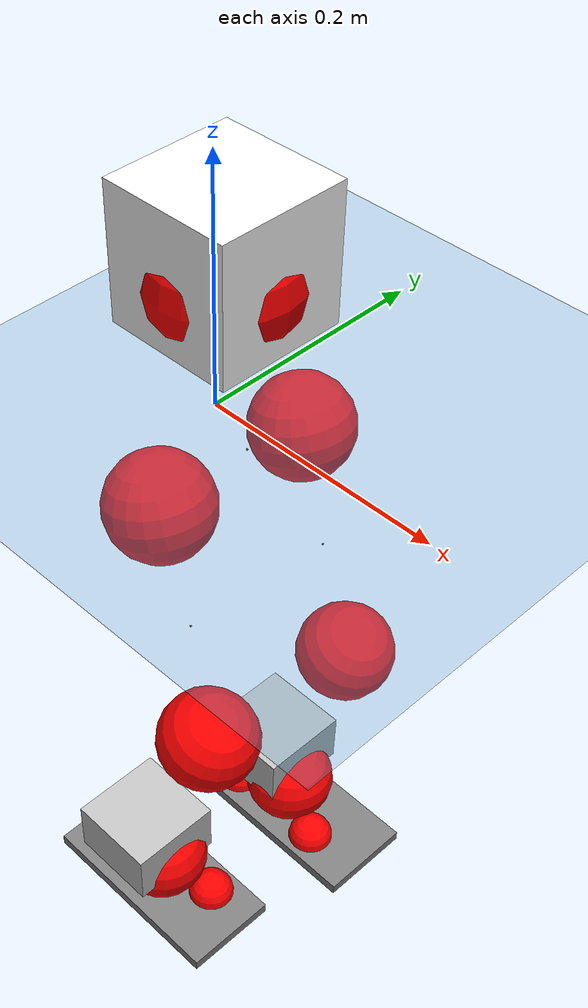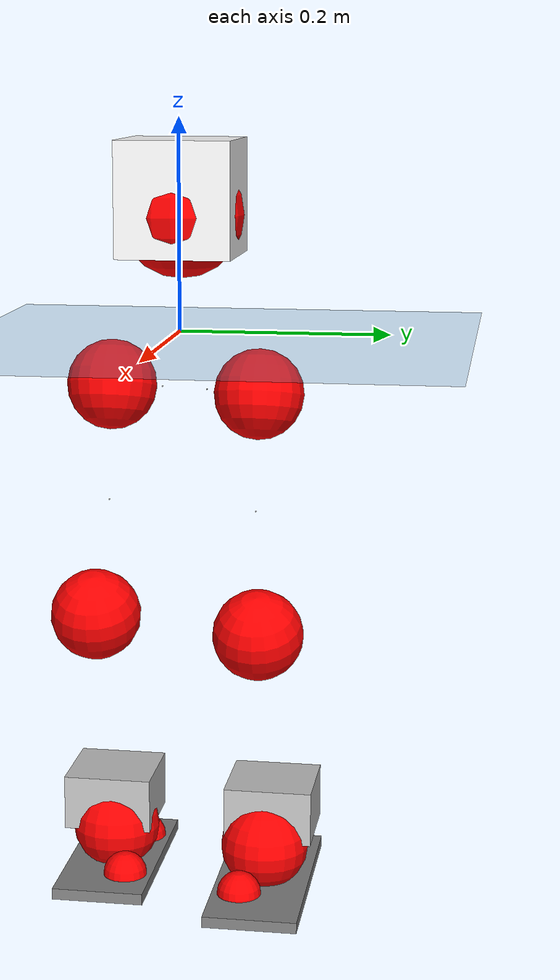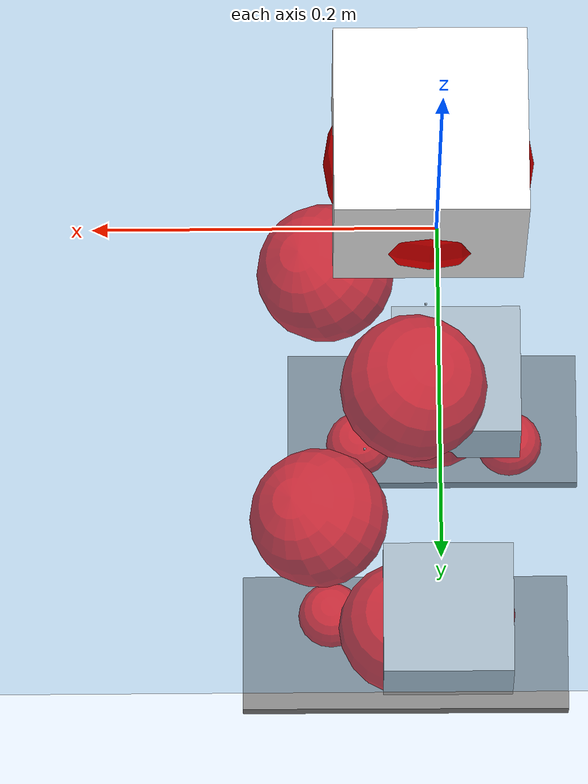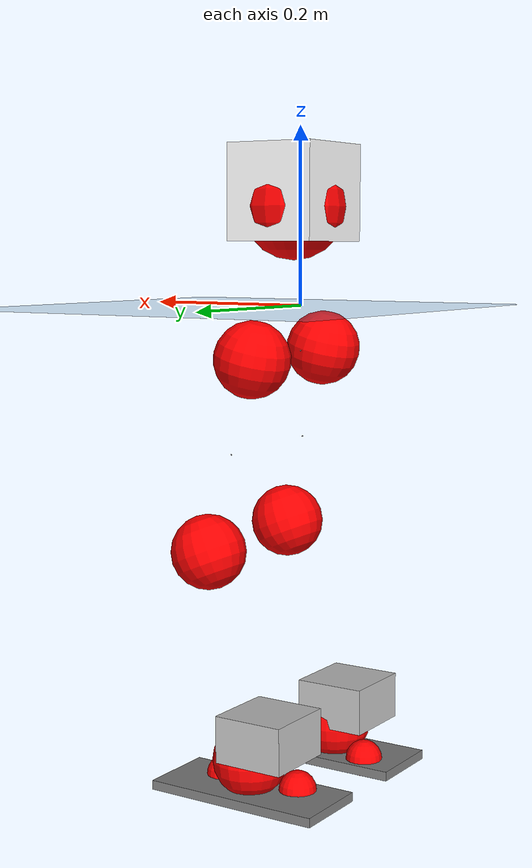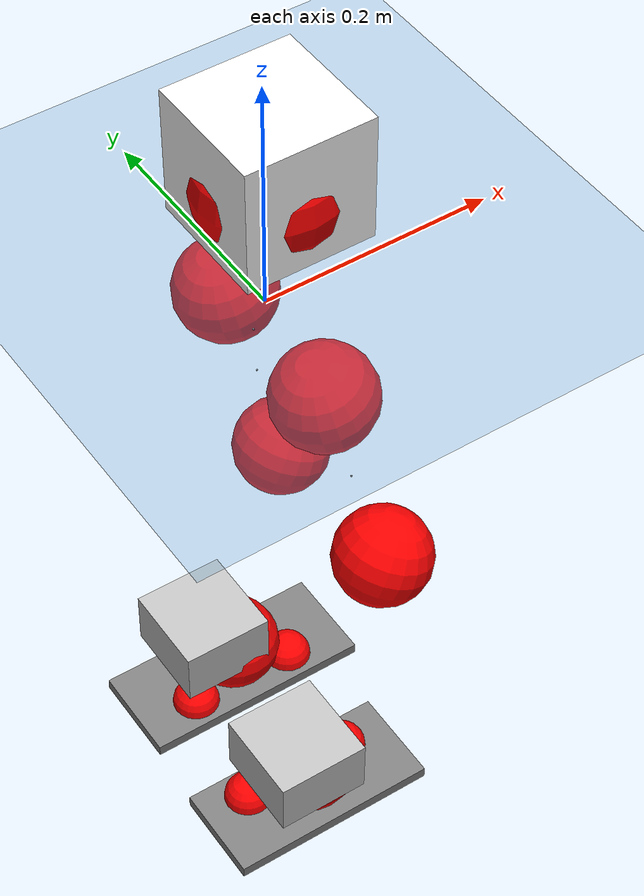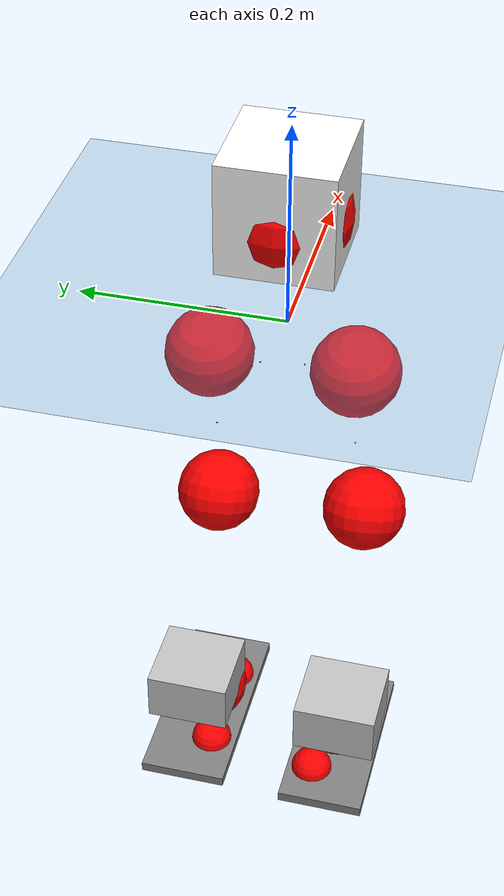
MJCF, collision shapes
<mujoco model="pi_12dof_release_v1">
  <compiler angle="radian" assetdir="assets" balanceinertia="true" inertiafromgeom="false"/>

  <option timestep="0.005" density="1.2" viscosity="2e-05"/>

  <size nkey="1"/>

  <visual>
    <quality shadowsize="8192"/>
    <map shadowclip="0.5"/>
  </visual>

  <default>
    <default class="/">
      <joint armature="0.01" damping="0.01" frictionloss="0.01"/>
      <geom contype="0" conaffinity="0" group="1" solref="-1000 -80"/>
      <site size="0.01 0.005 0.005" group="5"/>
      <general forcelimited="true" biastype="affine" gainprm="20" biasprm="0 -20 -0.5"/>
      <default class="foot">
        <geom size="0.0845 0.036 0.005" type="box" condim="6" group="4" priority="1" friction="0.9 0.2 0.2" solimp="0.015 1 0.005"/>
      </default>
      <default class="reward_collision_sphere">
        <geom group="5" rgba="1 0 0 1"/>
      </default>
    </default>
  </default>

  <asset>
    <texture type="skybox" colorspace="auto" name="//unnamed_texture_0" builtin="gradient" rgb1="0.95 0.95 0.95" rgb2="0.95 0.95 0.95" width="100" height="600"/>
    <texture type="2d" colorspace="auto" name="texplane" builtin="checker" rgb1="0.345 0.575 0.748" rgb2="0.345 0.575 0.748" markrgb="1 1 1" width="512" height="512"/>
    <material name="MatPlane" class="/" texture="texplane" texuniform="true" texrepeat="2 2" specular="0.9"/>
    <mesh name="baselink_1" class="/" file="baselink_1.STL"/>
    <mesh name="r_hip_pitch_link" class="/" file="r_hip_pitch_link.STL"/>
    <mesh name="r_hip_roll_link" class="/" file="r_hip_roll_link.STL"/>
    <mesh name="r_thigh_link" class="/" file="r_thigh_link.STL"/>
    <mesh name="r_calf_link" class="/" file="r_calf_link.STL"/>
    <mesh name="r_ankle_pitch_link" class="/" file="r_ankle_pitch_link.STL"/>
    <mesh name="r_ankle_roll_link" class="/" file="r_ankle_roll_link.STL"/>
    <mesh name="l_hip_pitch_link" class="/" file="l_hip_pitch_link.STL"/>
    <mesh name="l_hip_roll_link" class="/" file="l_hip_roll_link.STL"/>
    <mesh name="l_thigh_link" class="/" file="l_thigh_link.STL"/>
    <mesh name="l_calf_link" class="/" file="l_calf_link.STL"/>
    <mesh name="l_ankle_pitch_link" class="/" file="l_ankle_pitch_link.STL"/>
    <mesh name="l_ankle_roll_link" class="/" file="l_ankle_roll_link.STL"/>
  </asset>

  <worldbody>
    <geom name="floor" class="/" size="100 100 0.125" type="plane" group="0" material="MatPlane"/>
    <light name="toplight_shadow" class="/" pos="0 0 5" dir="0.0990148 0.0990148 -0.990148" type="directional" ambient="0.04 0.04 0.04" diffuse="0.55 0.55 0.55" specular="0.12 0.12 0.12"/>
    <light name="toplight_fill" class="/" pos="0 0 5" dir="0.0990148 0.0990148 -0.990148" type="directional" castshadow="false" ambient="0.04 0.04 0.04" diffuse="0.3 0.3 0.3" specular="0.08 0.08 0.08"/>
    <body name="trunk" pos="0.0072768 0.00328468 -0.00013879" quat="0.999997 -0.000447189 -0.00226247 -0.000567663">
      <inertial pos="0.00975582 -0.00353958 0.0625218" quat="0.694641 0.00960916 0.00881948 0.719239" mass="2.7173" diaginertia="0.00211751 0.00588436 0.0377702"/>
      <joint name="//unnamed_joint_0" type="free"/>
      <geom name="//unnamed_geom_1" class="/" type="mesh" density="0" rgba="1 1 1 1" mesh="baselink_1"/>
      <geom name="//unnamed_geom_2" class="/" size="0.0539615 0.0539615 0.0539615" pos="0 0 0.126535" type="box" rgba="1 1 1 1"/>
      <geom name="//unnamed_geom_3" class="reward_collision_sphere" size="0.0593577" pos="0 0 0.110719"/>
      <site name="imu" class="/" pos="0.0065438 0.00210041 -0.00640394" size="0.0107923"/>
      <camera name="track" class="/" pos="0 -1.83145 0" quat="0.707107 0.707107 0 0" mode="trackcom"/>
      <camera name="ego_camera" class="/" pos="0.0555204 0 0.284705" quat="-0.5 -0.5 0.5 0.5"/>
      <body name="r_hip_pitch_link" pos="0.00206444 -0.0188358 -0.0519388" quat="0.992371 -0.00230572 -0.123242 -0.00241957">
        <inertial pos="0.00887391 -0.0494794 0.000954535" quat="-0.0212559 0.700367 -0.0323957 0.712731" mass="0.420409" diaginertia="2.18347e-05 6.35402e-05 0.000749533"/>
        <joint name="r_hip_pitch_joint" class="/" pos="0 0 0" axis="0.00708261 -0.999872 0.0143476" stiffness="0.0372217" range="-1.73876 1.26719" armature="0.0105437" damping="0.0348589" frictionloss="0.00893072"/>
        <geom name="//unnamed_geom_4" class="/" type="mesh" density="0" rgba="0.75294 0.75294 0.75294 1" mesh="r_hip_pitch_link"/>
        <geom name="//unnamed_geom_5" class="/" size="0.000539615 0.000539615 0.000539615" type="box" rgba="0.75294 0.75294 0.75294 1"/>
        <body name="r_hip_roll_link" pos="6.52944e-05 -0.0488088 0.000620825" quat="1 5.99675e-06 5.85346e-05 4.72703e-05">
          <inertial pos="-0.00857871 0.00226811 -0.102279" quat="0.699939 -0.0848241 -0.0836591 0.704196" mass="0.479863" diaginertia="7.24113e-05 0.000182244 0.00126931"/>
          <joint name="r_hip_roll_joint" class="/" pos="0 0 0" axis="-1 0.000186074 -0.000155393" range="-0.0209483 0.472929" armature="0.0144322" damping="0.0246516" frictionloss="0.0115734"/>
          <geom name="//unnamed_geom_6" class="/" type="mesh" density="0" rgba="0.75294 0.75294 0.75294 1" mesh="r_hip_roll_link"/>
          <geom name="//unnamed_geom_7" class="/" size="0.000539615 0.000539615 0.000539615" type="box" rgba="0.75294 0.75294 0.75294 1"/>
          <geom name="//unnamed_geom_8" class="reward_collision_sphere" size="0.0431692"/>
          <body name="r_thigh_link" pos="0.000104078 0.00218033 -0.110293" quat="0.999999 -0.00103317 0.000946487 -5.74926e-05">
            <inertial pos="-0.00196835 -0.000154957 -0.0713094" quat="0.737943 0.674236 0.0245927 0.0155412" mass="0.144299" diaginertia="2.76004e-05 6.03278e-05 0.000595777"/>
            <joint name="r_thigh_joint" class="/" pos="0 0 0" axis="0.0131306 0.0181816 -0.999748" stiffness="0.037233" range="-0.288646 0.541056" armature="0.0139222" damping="0.00707057" frictionloss="0.00978942"/>
            <geom name="//unnamed_geom_9" class="/" type="mesh" density="0" rgba="0.75294 0.75294 0.75294 1" mesh="r_thigh_link"/>
            <geom name="//unnamed_geom_10" class="/" size="0.000539615 0.000539615 0.000539615" type="box" rgba="0.75294 0.75294 0.75294 1"/>
            <body name="r_calf_link" pos="6.43375e-05 -0.00795319 -0.109847" quat="0.947646 0.000195063 0.319323 -0.000225569">
              <inertial pos="-0.00468325 0.000433349 -0.110659" quat="0.999972 -0.00659109 0.00201405 -0.00277717" mass="0.86796" diaginertia="0.000731641 0.00211563 0.0017098"/>
              <joint name="r_calf_joint" class="/" pos="0 0 0" axis="0.00188062 -0.999988 0.00445835" range="-1.68334 0.760431" armature="0.00586869" damping="0.0346952" frictionloss="0.00636366"/>
              <geom name="//unnamed_geom_11" class="/" type="mesh" density="0" rgba="0.75294 0.75294 0.75294 1" mesh="r_calf_link"/>
              <geom name="//unnamed_geom_12" class="/" size="0.000539615 0.000539615 0.000539615" type="box" rgba="0.75294 0.75294 0.75294 1"/>
              <geom name="//unnamed_geom_13" class="reward_collision_sphere" size="0.0431692"/>
              <body name="r_ankle_pitch_link" pos="0.00304957 -0.000968993 -0.227331" quat="0.98065 0.00138184 -0.195761 0.00106349">
                <inertial pos="0.00702475 0.011205 -0.00123753" quat="0.00797179 0.702908 0.00460964 0.711221" mass="0.242765" diaginertia="6.8278e-05 0.000142642 0.00124817"/>
                <joint name="r_ankle_pitch_joint" class="/" pos="0 0 0" axis="0.0394229 -0.999208 -0.00537197" stiffness="0.0349823" range="-1.20333 0.416773" armature="0.00962388" damping="0.00570144" frictionloss="0.0124353"/>
                <geom name="//unnamed_geom_14" class="/" type="mesh" density="0" rgba="0.75294 0.75294 0.75294 1" mesh="r_ankle_pitch_link"/>
                <geom name="//unnamed_geom_15" class="/" size="0.04209 0.0431692 0.0269808" type="box" rgba="0.75294 0.75294 0.75294 1"/>
                <body name="r_ankle_roll_link" pos="0.0527864 0.00430215 0.00193064" quat="1 1.75341e-06 1.26706e-05 -8.94202e-07">
                  <inertial pos="-0.0188725 5.30463e-05 -0.0240767" quat="0.559385 0.426733 0.428318 0.567036" mass="0.621932" diaginertia="0.000220171 0.000650838 0.00268588"/>
                  <joint name="r_ankle_roll_joint" class="/" pos="0 0 0" axis="-0.998924 -0.0310285 0.0344564" stiffness="0.00710281" range="-0.192909 0.253574" armature="0.0120305" damping="0.0169162" frictionloss="0.0112599"/>
                  <geom name="//unnamed_geom_16" class="/" type="mesh" density="0" rgba="0.75294 0.75294 0.75294 1" mesh="r_ankle_roll_link"/>
                  <geom name="//unnamed_geom_17" class="/" type="mesh" rgba="0.75294 0.75294 0.75294 1" mesh="r_ankle_roll_link"/>
                  <geom name="right_foot" class="foot" size="0.0961176 0.0446472 0.00547539" pos="-0.0377538 0 -0.0695945"/>
                  <geom name="//unnamed_geom_19" class="reward_collision_sphere" size="0.0431692" pos="-0.0370136 0 -0.0316339"/>
                  <geom name="//unnamed_geom_20" class="reward_collision_sphere" size="0.0215846" pos="0.0111041 0.0183145 -0.0632677"/>
                  <geom name="//unnamed_geom_21" class="reward_collision_sphere" size="0.0215846" pos="-0.0888326 0.0183145 -0.0632677"/>
                  <site name="right_foot" class="foot" pos="-0.0377538 0 -0.0695945" size="0.0107923"/>
                </body>
              </body>
            </body>
          </body>
        </body>
      </body>
      <body name="l_hip_pitch_link" pos="-0.00162854 0.0233224 -0.0543328" quat="0.99272 0.000300427 -0.120433 -0.00148694">
        <inertial pos="-0.00664677 0.0476168 0.00100963" quat="-0.0374746 0.706378 0.0289206 0.706251" mass="0.510996" diaginertia="2.92614e-05 6.59379e-05 0.0010007"/>
        <joint name="l_hip_pitch_joint" class="/" pos="0 0 0" axis="-0.00527031 0.999949 -0.00865023" range="-1.28398 1.78176" armature="0.008577" damping="0.0239311" frictionloss="0.0106975"/>
        <geom name="//unnamed_geom_22" class="/" type="mesh" density="0" rgba="0.75294 0.75294 0.75294 1" mesh="l_hip_pitch_link"/>
        <geom name="//unnamed_geom_23" class="/" size="0.000539615 0.000539615 0.000539615" type="box" rgba="0.75294 0.75294 0.75294 1"/>
        <body name="l_hip_roll_link" pos="0.0066691 0.0512828 -0.00398803" quat="0.999994 -0.00290901 -0.00168668 0.000635079">
          <inertial pos="-0.00053784 -0.00115548 -0.0984224" quat="0.713199 -0.0777077 -0.0964198 0.689936" mass="0.517736" diaginertia="7.48661e-05 0.000187758 0.00127854"/>
          <joint name="l_hip_roll_joint" class="/" pos="0 0 0" axis="-0.999993 0.00236354 0.00295458" range="-0.521391 0.111642" armature="0.00854147" damping="0.0468194" frictionloss="0.010268"/>
          <geom name="//unnamed_geom_24" class="/" type="mesh" density="0" rgba="0.75294 0.75294 0.75294 1" mesh="l_hip_roll_link"/>
          <geom name="//unnamed_geom_25" class="/" size="0.000539615 0.000539615 0.000539615" type="box" rgba="0.75294 0.75294 0.75294 1"/>
          <geom name="//unnamed_geom_26" class="reward_collision_sphere" size="0.0431692"/>
          <body name="l_thigh_link" pos="0.000594219 0.00161321 -0.11092" quat="0.999999 0.000850462 0.000545424 -0.000441162">
            <inertial pos="-0.000386795 -0.00122837 -0.0770158" quat="0.67415 0.738589 -0.000753041 -0.00278573" mass="0.140366" diaginertia="2.79065e-05 6.22474e-05 0.000561521"/>
            <joint name="l_thigh_joint" class="/" pos="0 0 0" axis="-0.00399468 -0.00718379 -0.999966" range="-0.612659 0.246811" armature="0.0116871" damping="0.000167008" frictionloss="0.00963694"/>
            <geom name="//unnamed_geom_27" class="/" type="mesh" density="0" rgba="0.75294 0.75294 0.75294 1" mesh="l_thigh_link"/>
            <geom name="//unnamed_geom_28" class="/" size="0.000539615 0.000539615 0.000539615" type="box" rgba="0.75294 0.75294 0.75294 1"/>
            <body name="l_calf_link" pos="-0.00102878 0.00683055 -0.115956" quat="0.947166 0.000325645 0.320742 -0.000782342">
              <inertial pos="0.000478968 -0.00102995 -0.109594" quat="0.999602 0.0121249 -0.0049596 -0.0249901" mass="1.00771" diaginertia="0.000754843 0.00215657 0.00170515"/>
              <joint name="l_calf_joint" class="/" pos="0 0 0" axis="-0.01464 0.999816 0.012412" range="-0.689407 1.69598" armature="0.0148637" damping="0" frictionloss="0.00675997"/>
              <geom name="//unnamed_geom_29" class="/" type="mesh" density="0" rgba="0.75294 0.75294 0.75294 1" mesh="l_calf_link"/>
              <geom name="//unnamed_geom_30" class="/" size="0.000539615 0.000539615 0.000539615" type="box" rgba="0.75294 0.75294 0.75294 1"/>
              <geom name="//unnamed_geom_31" class="reward_collision_sphere" size="0.0431692"/>
              <body name="l_ankle_pitch_link" pos="0.00162705 0.00390199 -0.21667" quat="0.980099 0.000135534 -0.198509 0.000104317">
                <inertial pos="0.0042694 0.000197477 0.00134087" quat="-0.00214119 0.707025 0.00277575 0.70718" mass="0.222491" diaginertia="6.82178e-05 0.000142088 0.00127373"/>
                <joint name="l_ankle_pitch_joint" class="/" pos="0 0 0" axis="0.00921549 0.999943 -0.00538061" range="-0.555333 1.30723" armature="0.0106047" damping="0" frictionloss="0.0106675"/>
                <geom name="//unnamed_geom_32" class="/" type="mesh" density="0" rgba="0.75294 0.75294 0.75294 1" mesh="l_ankle_pitch_link"/>
                <geom name="//unnamed_geom_33" class="/" size="0.04209 0.0431692 0.0269808" type="box" rgba="0.75294 0.75294 0.75294 1"/>
                <body name="l_ankle_roll_link" pos="0.0649993 -0.0040939 -0.00207059" quat="0.999999 -1.07807e-05 0.000983642 0.000442764">
                  <inertial pos="-0.0262356 -0.00204915 -0.0244182" quat="0.56048 0.430402 0.434041 0.558771" mass="0.641432" diaginertia="0.000270246 0.000760262 0.00296132"/>
                  <joint name="l_ankle_roll_joint" class="/" pos="0 0 0" axis="-0.999742 -0.0217536 0.00661178" stiffness="0.00991884" range="-0.182765 0.145541" armature="0.0118634" damping="0" frictionloss="0.0115847"/>
                  <geom name="//unnamed_geom_34" class="/" type="mesh" density="0" rgba="0.75294 0.75294 0.75294 1" mesh="l_ankle_roll_link"/>
                  <geom name="//unnamed_geom_35" class="/" type="mesh" rgba="0.75294 0.75294 0.75294 1" mesh="l_ankle_roll_link"/>
                  <geom name="left_foot" class="foot" size="0.106995 0.045427 0.00535769" pos="-0.0377538 0 -0.0695945"/>
                  <geom name="//unnamed_geom_37" class="reward_collision_sphere" size="0.0431692" pos="-0.0370136 0 -0.0316339"/>
                  <geom name="//unnamed_geom_38" class="reward_collision_sphere" size="0.0215846" pos="0.0111041 -0.0183145 -0.0632677"/>
                  <geom name="//unnamed_geom_39" class="reward_collision_sphere" size="0.0215846" pos="-0.0888326 -0.0183145 -0.0632677"/>
                  <site name="left_foot" class="foot" pos="-0.0377538 0 -0.0695945" size="0.0107923"/>
                </body>
              </body>
            </body>
          </body>
        </body>
      </body>
    </body>
  </worldbody>

  <contact>
    <pair class="/" geom1="floor" geom2="right_foot" name="//unnamed_contact_1"/>
    <pair class="/" geom1="floor" geom2="left_foot" name="//unnamed_contact_0"/>
  </contact>

  <actuator>
    <general name="r_hip_pitch_joint" class="/" joint="r_hip_pitch_joint" forcerange="-21.2627 21.2627" gainprm="22.7443" biasprm="0 -22.7443 -0.564625"/>
    <general name="r_hip_roll_joint" class="/" joint="r_hip_roll_joint" forcerange="-23.2434 23.2434" gainprm="22.7443" biasprm="0 -22.7443 -0.564625"/>
    <general name="r_thigh_joint" class="/" joint="r_thigh_joint" forcerange="-22.99 22.99" gainprm="22.7443" biasprm="0 -22.7443 -0.564625"/>
    <general name="r_calf_joint" class="/" joint="r_calf_joint" forcerange="-20.9245 20.9245" gainprm="22.7443" biasprm="0 -22.7443 -0.564625"/>
    <general name="r_ankle_pitch_joint" class="/" joint="r_ankle_pitch_joint" forcerange="-24.2515 24.2515" gainprm="22.7443" biasprm="0 -22.7443 -0.564625"/>
    <general name="r_ankle_roll_joint" class="/" joint="r_ankle_roll_joint" forcerange="-20.9381 20.9381" gainprm="22.7443" biasprm="0 -22.7443 -0.564625"/>
    <general name="l_hip_pitch_joint" class="/" joint="l_hip_pitch_joint" forcerange="-21.3265 21.3265" gainprm="22.7443" biasprm="0 -22.7443 -0.564625"/>
    <general name="l_hip_roll_joint" class="/" joint="l_hip_roll_joint" forcerange="-23.7412 23.7412" gainprm="22.7443" biasprm="0 -22.7443 -0.564625"/>
    <general name="l_thigh_joint" class="/" joint="l_thigh_joint" forcerange="-22.8344 22.8344" gainprm="22.7443" biasprm="0 -22.7443 -0.564625"/>
    <general name="l_calf_joint" class="/" joint="l_calf_joint" forcerange="-15.6261 15.6261" gainprm="22.7443" biasprm="0 -22.7443 -0.564625"/>
    <general name="l_ankle_pitch_joint" class="/" joint="l_ankle_pitch_joint" forcerange="-23.1825 23.1825" gainprm="22.7443" biasprm="0 -22.7443 -0.564625"/>
    <general name="l_ankle_roll_joint" class="/" joint="l_ankle_roll_joint" forcerange="-25.9506 25.9506" gainprm="22.7443" biasprm="0 -22.7443 -0.564625"/>
  </actuator>

  <sensor>
    <gyro site="imu" name="imu_angular_velocity"/>
    <velocimeter site="imu" name="imu_linear_velocity"/>
    <framelinvel objtype="site" objname="left_foot" name="left_foot_global_linear_velocity"/>
    <framelinvel objtype="site" objname="right_foot" name="right_foot_global_linear_velocity"/>
  </sensor>

  <keyframe>
    <key name="home" qpos="0 0 0.291 1 0 0 0 0.4 0 0 -0.8 0.4 0 -0.4 0 0 0.8 -0.4 0"/>
  </keyframe>
</mujoco>
